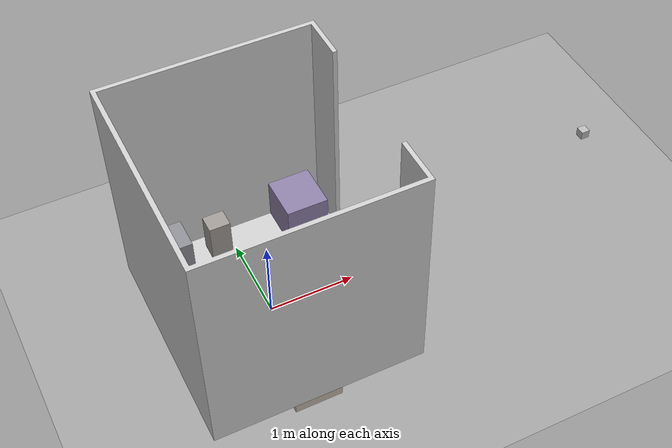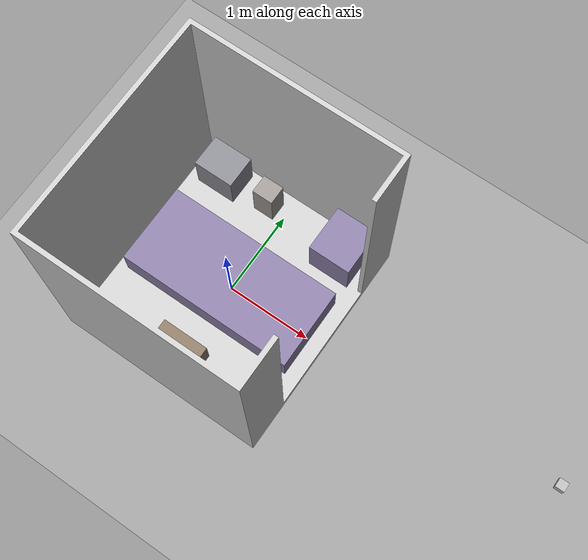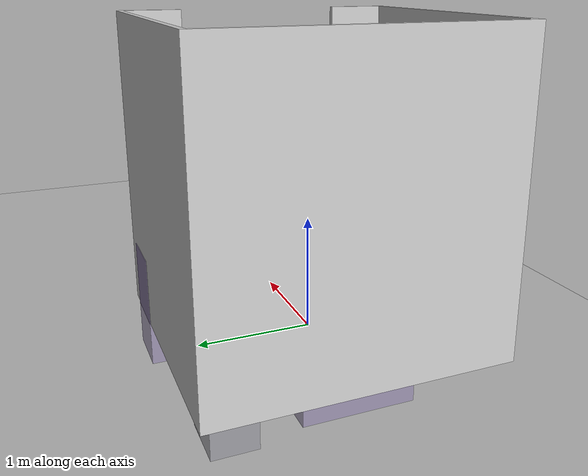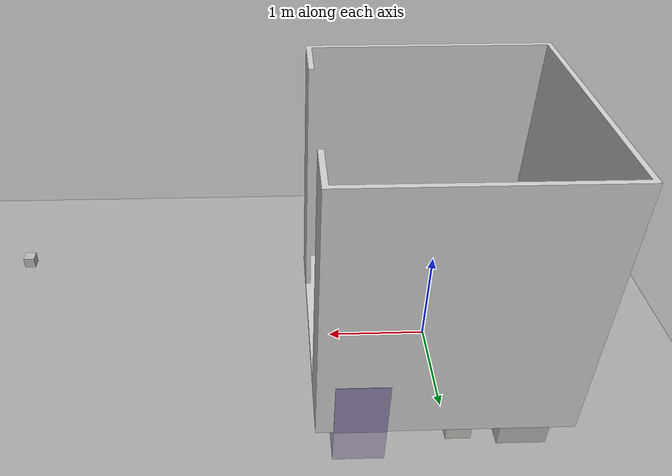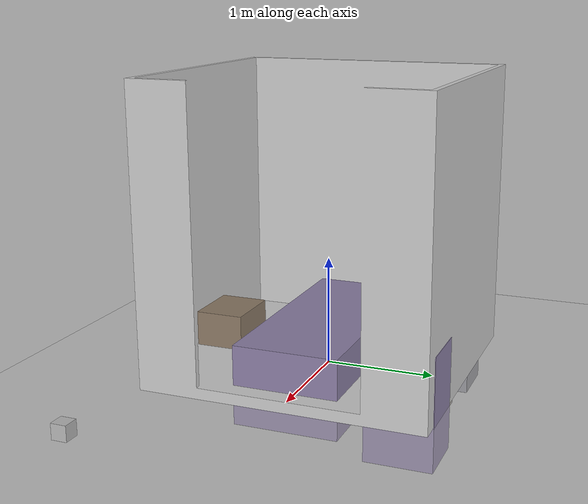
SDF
<?xml version="1.0" ?>
<sdf version="1.8">
    <world name="mobile_unit">
        <physics name="1ms" type="ignored">
            <max_step_size>0.001</max_step_size>
            <real_time_factor>1.0</real_time_factor>
        </physics>
        <plugin
            filename="libignition-gazebo-physics-system.so"
            name="ignition::gazebo::systems::Physics">
        </plugin>
         <plugin
            filename="ignition-gazebo-sensors-system.so"
            name="ignition::gazebo::systems::Sensors">
            <render_engine>ogre</render_engine>
        </plugin>
        <plugin
            filename="libignition-gazebo-user-commands-system.so"
            name="ignition::gazebo::systems::UserCommands">
        </plugin>
        <plugin
            filename="libignition-gazebo-scene-broadcaster-system.so"
            name="ignition::gazebo::systems::SceneBroadcaster">
        </plugin>

        <light type="directional" name="sun">
            <cast_shadows>true</cast_shadows>
            <pose>0 0 10 0 0 0</pose>
            <diffuse>0.8 0.8 0.8 1</diffuse>
            <specular>0.2 0.2 0.2 1</specular>
            <attenuation>
                <range>1000</range>
                <constant>0.9</constant>
                <linear>0.01</linear>
                <quadratic>0.001</quadratic>
            </attenuation>
            <direction>-0.1 0.1 -0.9</direction>
        </light>

        <model name="ground_plane">
            <static>true</static>
            <link name="link">
                <collision name="collision">
                <geometry>
                    <plane>
                    <normal>0 0 1</normal>
                    </plane>
                </geometry>
                </collision>
                <visual name="visual">
                <geometry>
                    <plane>
                    <normal>0 0 1</normal>
                    <size>100 100</size>
                    </plane>
                </geometry>
                <material>
                    <ambient>0.8 0.8 0.8 1</ambient>
                    <diffuse>0.8 0.8 0.8 1</diffuse>
                    <specular>0.8 0.8 0.8 1</specular>
                </material>
                </visual>
            </link>
        </model>

        <model name="ExameRoom">
            <static>true</static>
                <link name="body">
                <pose>0 0 0.1016 0 0 0</pose>

                <visual name="visual">
                    <geometry>
                    <mesh>
                        <uri>files://meshes/exam_room/room.dae</uri>
                    </mesh>
                    </geometry>

                    <material>
                    <ambient>0.4 0.4 0.4 1</ambient>
                    <diffuse>0.8 0.8 0.8 1</diffuse>
                    <specular>0.8 0.8 0.8 1</specular>
                </material>
                </visual>

                <collision name="collision">
                    <geometry>
                    <mesh>
                        <uri>files://meshes/exam_room/room.dae</uri>
                    </mesh>
                    </geometry>
                </collision>

                </link>
            </model>

        <!--TrolleyBedPatient-->

        <include>
            <static> true </static>
            <pose>0 0 0.1016 0 0 0</pose>
            <uri>
            https://fuel.gazebosim.org/1.0/OpenRobotics/models/TrolleyBedPatient
            </uri>
        </include>

        <include>
            <static>true</static>
            <pose>0.8 1.0 0.1016 0 0 -1.5707</pose>
            <uri>
            https://fuel.gazebosim.org/1.0/OpenRobotics/models/Scrubs
            </uri>
        </include>

        <include>
            <static> true </static>
            <pose>-0.8 1 0.1016 0 0 0</pose>
            <uri>
            https://fuel.gazebosim.org/1.0/OpenRobotics/models/BPCart
            </uri>
        </include>

        <include>
            <static> true </static>
            <pose>-0.2 1 0.1016 0 0 0</pose>
            <uri>
            https://fuel.gazebosim.org/1.0/OpenRobotics/models/BloodPressureMonitor
            </uri>
        </include>

        <include>
            <static> true </static>
            <pose>0 -1.0 0.1016 0 0 0</pose>
            <uri>
            https://fuel.gazebosim.org/1.0/OpenRobotics/models/BedsideTable
            </uri>
        </include>

        <model name="camera">
        <pose>4 0 1.0 0 0.0 3.14</pose>
        <link name="link">
            <pose>0.05 0.05 0.05 0 0 0</pose>
            <inertial>
                <mass>0.1</mass>
                <inertia>
                    <ixx>0.000166667</ixx>
                    <iyy>0.000166667</iyy>
                    <izz>0.000166667</izz>
                </inertia>
            </inertial>
            <collision name="collision">
                <geometry>
                    <box>
                        <size>0.1 0.1 0.1</size>
                    </box>
                </geometry>
            </collision>
            <visual name="visual">
                <geometry>
                    <box>
                        <size>0.1 0.1 0.1</size>
                    </box>
                </geometry>
            </visual>
            <sensor name="camera" type="camera">
                <camera>
                    <horizontal_fov>1.047</horizontal_fov>
                    <image>
                        <width>320</width>
                        <height>240</height>
                    </image>
                    <clip>
                        <near>0.1</near>
                        <far>100</far>
                    </clip>
                </camera>
                <always_on>1</always_on>
                <update_rate>30</update_rate>
                <visualize>true</visualize>
                <topic>camera</topic>
            </sensor>
        </link>
    </model>
    </world>
</sdf>

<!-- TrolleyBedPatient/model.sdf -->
<sdf version="1.6">
  <model name="TrolleyBedPatient">
    <static>true</static>
    <link name="link">
      <collision name="col">
        <geometry>
          <box>
            <size>2.1 0.95 0.72</size>
          </box>
        </geometry>
      </collision>
      <visual name="vis">
        <geometry>
          <box>
            <size>2.1 0.95 0.72</size>
          </box>
        </geometry>
        <material>
          <ambient>0.55 0.5 0.65 1</ambient>
          <diffuse>0.55 0.5 0.65 1</diffuse>
        </material>
      </visual>
    </link>
  </model>
</sdf>

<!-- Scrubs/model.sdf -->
<sdf version="1.6">
  <model name="Scrubs">
    <static>true</static>
    <link name="link">
      <collision name="col">
        <geometry>
          <box>
            <size>0.6 0.5 1.0</size>
          </box>
        </geometry>
      </collision>
      <visual name="vis">
        <geometry>
          <box>
            <size>0.6 0.5 1.0</size>
          </box>
        </geometry>
        <material>
          <ambient>0.55 0.5 0.65 1</ambient>
          <diffuse>0.55 0.5 0.65 1</diffuse>
        </material>
      </visual>
    </link>
  </model>
</sdf>

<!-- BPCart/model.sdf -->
<sdf version="1.6">
  <model name="BPCart">
    <static>true</static>
    <link name="link">
      <collision name="col">
        <geometry>
          <box>
            <size>0.48 0.38 0.92</size>
          </box>
        </geometry>
      </collision>
      <visual name="vis">
        <geometry>
          <box>
            <size>0.48 0.38 0.92</size>
          </box>
        </geometry>
        <material>
          <ambient>0.55 0.55 0.58 1</ambient>
          <diffuse>0.55 0.55 0.58 1</diffuse>
        </material>
      </visual>
    </link>
  </model>
</sdf>

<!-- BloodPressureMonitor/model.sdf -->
<sdf version="1.6">
  <model name="BloodPressureMonitor">
    <static>true</static>
    <link name="link">
      <collision name="col">
        <geometry>
          <box>
            <size>0.25 0.22 0.95</size>
          </box>
        </geometry>
      </collision>
      <visual name="vis">
        <geometry>
          <box>
            <size>0.25 0.22 0.95</size>
          </box>
        </geometry>
        <material>
          <ambient>0.62 0.6 0.58 1</ambient>
          <diffuse>0.62 0.6 0.58 1</diffuse>
        </material>
      </visual>
    </link>
  </model>
</sdf>

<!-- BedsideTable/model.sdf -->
<sdf version="1.6">
  <model name="BedsideTable">
    <static>true</static>
    <link name="link">
      <collision name="col">
        <geometry>
          <box>
            <size>0.55 0.45 0.65</size>
          </box>
        </geometry>
      </collision>
      <visual name="vis">
        <geometry>
          <box>
            <size>0.55 0.45 0.65</size>
          </box>
        </geometry>
        <material>
          <ambient>0.55 0.48 0.4 1</ambient>
          <diffuse>0.55 0.48 0.4 1</diffuse>
        </material>
      </visual>
    </link>
  </model>
</sdf>
